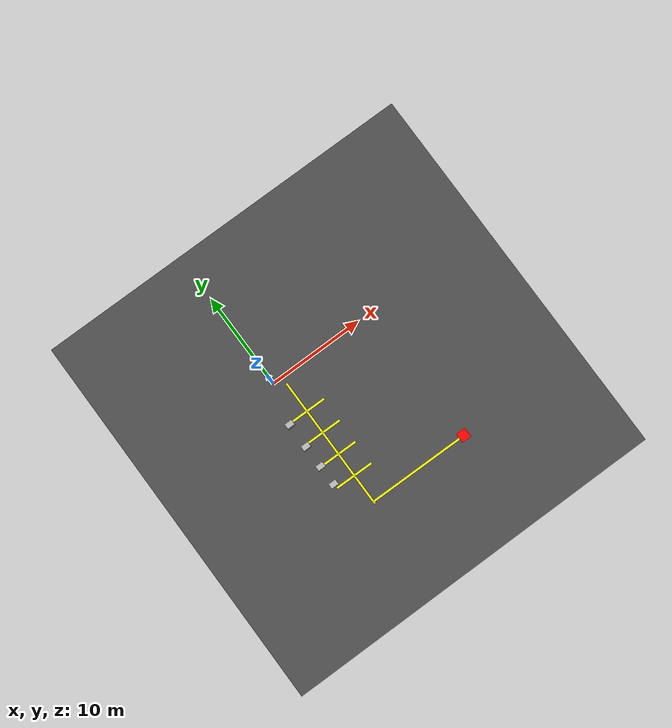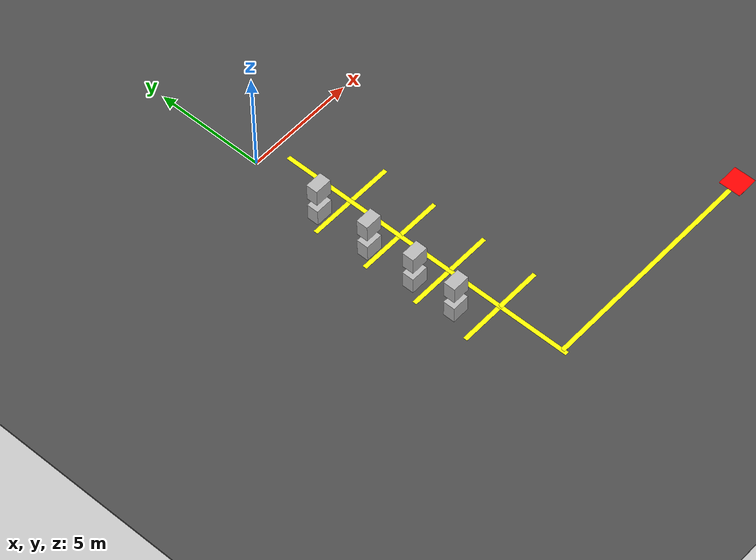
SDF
<sdf version="1.6">
 <world name="default">
  <light name="sun" type="directional">
   <pose>0 0 10 0 -0 0</pose>
   <diffuse>0.8 0.8 0.8 1</diffuse>
   <specular>0.2 0.2 0.2 1</specular>
   <attenuation>
    <range>1000</range>
    <constant>0.9</constant>
    <linear>0.01</linear>
    <quadratic>0.001</quadratic>
   </attenuation>
   <direction>-0.5 0.1 -0.9</direction>
  </light>
  <gravity>0 0 -9.8</gravity>
  <magnetic_field>6e-06 2.3e-05 -4.2e-05</magnetic_field>
  <atmosphere type="adiabatic"/>
  <physics name="default_physics" default="0" type="ode">
   <max_step_size>0.001</max_step_size>
   <real_time_factor>1</real_time_factor>
   <real_time_update_rate>1000</real_time_update_rate>
  </physics>
  <scene><ambient>0.4 0.4 0.4 1</ambient><background>0.7 0.7 0.7 1</background><shadows>1</shadows></scene>
  <spherical_coordinates>
   <surface_model>EARTH_WGS84</surface_model>
   <latitude_deg>0</latitude_deg>
   <longitude_deg>0</longitude_deg>
   <elevation>0</elevation>
   <heading_deg>0</heading_deg>
  </spherical_coordinates>
  <model name="asphalt_plane">
   <static>1</static>
   <link name="link">
    <collision name="collision"><geometry><box><size>40 40 0.1</size></box></geometry></collision>
    <visual name="visual">
     <cast_shadows>0</cast_shadows>
     <geometry><box><size>40 40 0.1</size></box></geometry>
     <material>
      <script>
       <uri>model://asphalt_plane/materials/scripts</uri>
       <uri>model://asphalt_plane/materials/textures</uri>
       <name>vrc/asphalt</name>
      </script>
     </material>
    </visual>
   </link>
   <pose>5 -5 0 0 -0 0</pose>
  </model>
  <model name="Box1_1">
   <link name="link">
    <pose>0 0 0.3125 0 -0 0</pose>
    <visual name="visual">
     <geometry>
      <mesh><uri>model://big_box3/meshes/big_box_1.dae</uri><scale>0.64 0.64 0.64</scale></mesh>
     </geometry>
    </visual>
   </link>
   <static>1</static>
   <pose>-1 -11 1.45 0 -0 0</pose>
  </model>
  <model name="Box1_2">
   <link name="link">
    <pose>0 0 0.3125 0 -0 0</pose>
    <visual name="visual">
     <geometry>
      <mesh><uri>model://big_box3/meshes/big_box_2.dae</uri><scale>0.64 0.64 0.64</scale></mesh>
     </geometry>
    </visual>
   </link>
   <static>1</static>
   <pose>-1 -9 1.45 0 -0 0</pose>
  </model>
  <model name="Box1_3">
   <link name="link">
    <pose>0 0 0.3125 0 -0 0</pose>
    <visual name="visual">
     <geometry>
      <mesh><uri>model://big_box3/meshes/big_box_1.dae</uri><scale>0.64 0.64 0.64</scale></mesh>
     </geometry>
    </visual>
   </link>
   <static>1</static>
   <pose>-1 -6.75 1.45 0 -0 0</pose>
  </model>
  <model name="Box1_4">
   <link name="link">
    <pose>0 0 0.3125 0 -0 0</pose>
    <visual name="visual">
     <geometry>
      <mesh><uri>model://big_box3/meshes/big_box_1.dae</uri><scale>0.64 0.64 0.64</scale></mesh>
     </geometry>
    </visual>
   </link>
   <static>1</static>
   <pose>-1 -4.25 1.45 0 -0 0</pose>
  </model>
  <model name="Box2_1">
   <link name="link">
    <pose>0 0 0.3125 0 -0 0</pose>
    <visual name="visual">
     <geometry>
      <mesh><uri>model://big_box3/meshes/big_box_3.dae</uri><scale>0.64 0.64 0.64</scale></mesh>
     </geometry>
    </visual>
   </link>
   <static>1</static>
   <pose>-1 -11 2.65 0 -0 0</pose>
  </model>
  <model name="Box2_2">
   <link name="link">
    <pose>0 0 0.3125 0 -0 0</pose>
    <visual name="visual">
     <geometry>
      <mesh><uri>model://big_box3/meshes/big_box_4.dae</uri><scale>0.64 0.64 0.64</scale></mesh>
     </geometry>
    </visual>
   </link>
   <static>1</static>
   <pose>-1 -9 2.65 0 -0 0</pose>
  </model>
  <model name="Box2_3">
   <link name="link">
    <pose>0 0 0.3125 0 -0 0</pose>
    <visual name="visual">
     <geometry>
      <mesh><uri>model://big_box3/meshes/big_box_3.dae</uri><scale>0.64 0.64 0.64</scale></mesh>
     </geometry>
    </visual>
   </link>
   <static>1</static>
   <pose>-1 -6.75 2.65 0 -0 0</pose>
  </model>
  <model name="Box2_4">
   <link name="link">
    <pose>0 0 0.3125 0 -0 0</pose>
    <visual name="visual">
     <geometry>
      <mesh><uri>model://big_box3/meshes/big_box_4.dae</uri><scale>0.64 0.64 0.64</scale></mesh>
     </geometry>
    </visual>
   </link>
   <static>1</static>
   <pose>-1 -4.25 2.65 0 -0 0</pose>
  </model>
  <model name="line">
   <link name="line">
    <visual name="main_line">
     <geometry><box><size>0.2 14 0.005</size></box></geometry>
     <material>
      <lighting>1</lighting>
      <ambient>1 1 0 1</ambient>
      <diffuse>1 1 0 1</diffuse>
      <specular>0.1 0.1 0.1 1</specular>
      <emissive>0 0 0 0</emissive>
     </material>
    </visual>
    <visual name="aux_line1">
     <pose>0 -1.25 0 0 -0 1.56463</pose>
     <geometry><box><size>0.2 4 0.005</size></box></geometry>
     <material>
      <lighting>1</lighting>
      <ambient>1 1 0 1</ambient>
      <diffuse>1 1 0 1</diffuse>
      <specular>0.1 0.1 0.1 1</specular>
      <emissive>0 0 0 0</emissive>
     </material>
    </visual>
    <visual name="aux_line2">
     <pose>0 1.25 0 0 -0 1.56463</pose>
     <geometry><box><size>0.2 4 0.005</size></box></geometry>
     <material>
      <lighting>1</lighting>
      <ambient>1 1 0 1</ambient>
      <diffuse>1 1 0 1</diffuse>
      <specular>0.1 0.1 0.1 1</specular>
      <emissive>0 0 0 0</emissive>
     </material>
    </visual>
    <visual name="aux_line3">
     <pose>0 -3.75 0 0 -0 1.56463</pose>
     <geometry><box><size>0.2 4 0.005</size></box></geometry>
     <material>
      <lighting>1</lighting>
      <ambient>1 1 0 1</ambient>
      <diffuse>1 1 0 1</diffuse>
      <specular>0.1 0.1 0.1 1</specular>
      <emissive>0 0 0 0</emissive>
     </material>
    </visual>
    <visual name="aux_line4">
     <pose>0 3.75 0 0 -0 1.56463</pose>
     <geometry><box><size>0.2 4 0.005</size></box></geometry>
     <material>
      <lighting>1</lighting>
      <ambient>1 1 0 1</ambient>
      <diffuse>1 1 0 1</diffuse>
      <specular>0.1 0.1 0.1 1</specular>
      <emissive>0 0 0 0</emissive>
     </material>
    </visual>
    <visual name="aux_line5">
     <pose>5 -6.8 0 0 -0 1.56463</pose>
     <geometry><box><size>0.2 10 0.005</size></box></geometry>
     <material>
      <lighting>1</lighting>
      <ambient>1 1 0 1</ambient>
      <diffuse>1 1 0 1</diffuse>
      <specular>0.1 0.1 0.1 1</specular>
      <emissive>0 0 0 0</emissive>
     </material>
    </visual>
    <visual name="square">
     <pose>10.5 -6.8 0.01 0 -0 0</pose>
     <geometry><box><size>1 1 0.005</size></box></geometry>
     <material>
      <lighting>1</lighting>
      <ambient>1 0 0 1</ambient>
      <diffuse>1 0 0 1</diffuse>
      <specular>0.1 0.1 0.1 1</specular>
      <emissive>0 0 0 0</emissive>
     </material>
    </visual>
   </link>
   <static>1</static>
   <pose>1 -7.75 0.05 0 -0 0</pose>
  </model>
 </world>
</sdf>
